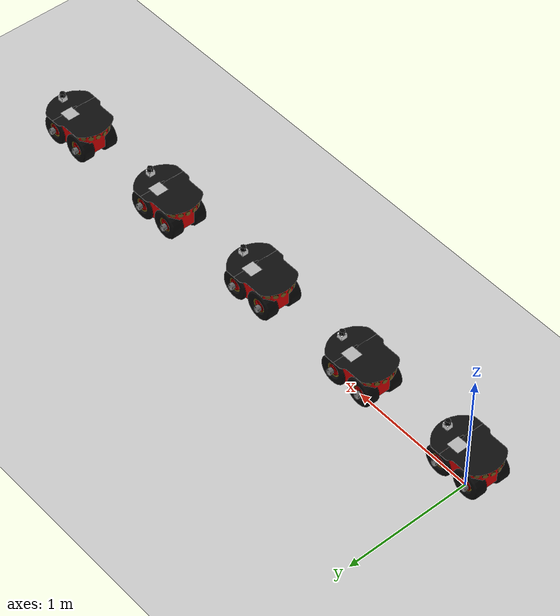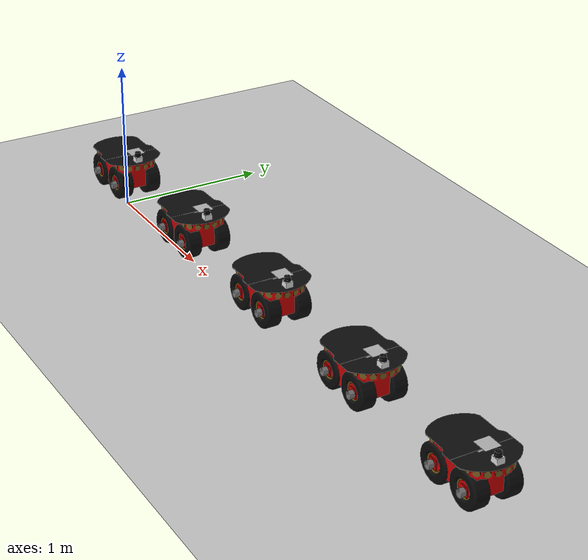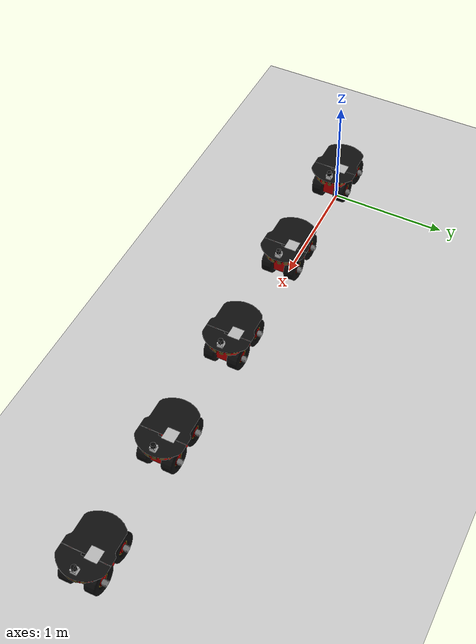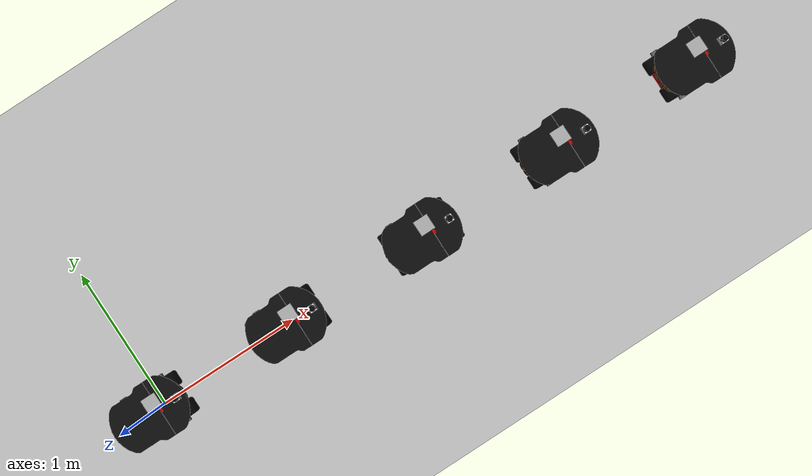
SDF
<sdf version="1.4">
 <world name="default">
  <model name="ground_plane">
   <static>1</static>
   <link name="link">
    <collision name="collision">
     <geometry><plane><normal>0 0 1</normal><size>100 100</size></plane></geometry>
     <surface><friction><ode><mu>100</mu><mu2>50</mu2></ode></friction></surface>
    </collision>
    <visual name="visual">
     <cast_shadows>0</cast_shadows>
     <geometry><plane><normal>0 0 1</normal><size>100 100</size></plane></geometry>
     <material>
      <script><uri>file://media/materials/scripts/gazebo.material</uri><name>Gazebo/Grey</name></script>
     </material>
    </visual>
    <velocity_decay><linear>0</linear><angular>0</angular></velocity_decay>
   </link>
  </model>
  <model name="pioneer3at_1">
   <pose>0 0 0.3 0 -0 0</pose>
   <static>0</static>
   <link name="chassis">
    <inertial>
     <mass>500</mass>
     <inertia><ixx>0.3338</ixx><ixy>0</ixy><ixz>0</ixz><iyy>0.4783</iyy><iyz>0</iyz><izz>0.3338</izz></inertia>
    </inertial>
    <collision name="collision"><geometry><box><size>0.501 0.2 0.19</size></box></geometry></collision>
    <visual name="visual">
     <geometry><mesh><uri>model://pioneer3at/meshes/chassis.dae</uri></mesh></geometry>
    </visual>
    <velocity_decay><linear>0</linear><angular>0</angular></velocity_decay>
   </link>
   <link name="right_front_wheel">
    <pose>0.125 -0.1005 -0.06 1.5707 -0 0</pose>
    <collision name="collision">
     <geometry><cylinder><radius>0.11</radius><length>0.075</length></cylinder></geometry>
     <surface><friction><ode><mu>1</mu><mu2>1</mu2><slip1>0.5</slip1><slip2>0</slip2></ode></friction></surface>
    </collision>
    <visual name="visual">
     <geometry><mesh><uri>model://pioneer3at/meshes/wheel.dae</uri></mesh></geometry>
    </visual>
    <velocity_decay><linear>0</linear><angular>0</angular></velocity_decay>
    <inertial>
     <inertia><ixx>1</ixx><ixy>0</ixy><ixz>0</ixz><iyy>1</iyy><iyz>0</iyz><izz>1</izz></inertia>
     <mass>1</mass>
    </inertial>
   </link>
   <link name="left_front_wheel">
    <pose>0.125 0.1005 -0.06 1.5707 -0 0</pose>
    <collision name="collision">
     <geometry><cylinder><radius>0.11</radius><length>0.075</length></cylinder></geometry>
     <surface><friction><ode><mu>1</mu><mu2>1</mu2><slip1>0.5</slip1><slip2>0</slip2></ode></friction></surface>
    </collision>
    <visual name="visual">
     <geometry><mesh><uri>model://pioneer3at/meshes/wheel.dae</uri></mesh></geometry>
    </visual>
    <velocity_decay><linear>0</linear><angular>0</angular></velocity_decay>
    <inertial>
     <inertia><ixx>1</ixx><ixy>0</ixy><ixz>0</ixz><iyy>1</iyy><iyz>0</iyz><izz>1</izz></inertia>
     <mass>1</mass>
    </inertial>
   </link>
   <link name="right_rear_wheel">
    <pose>-0.125 -0.1005 -0.06 1.5707 -0 0</pose>
    <collision name="collision">
     <geometry><cylinder><radius>0.11</radius><length>0.075</length></cylinder></geometry>
     <surface><friction><ode><mu>1</mu><mu2>1</mu2><slip1>0.5</slip1><slip2>0</slip2></ode></friction></surface>
    </collision>
    <visual name="visual">
     <geometry><mesh><uri>model://pioneer3at/meshes/wheel.dae</uri></mesh></geometry>
    </visual>
    <velocity_decay><linear>0</linear><angular>0</angular></velocity_decay>
    <inertial>
     <inertia><ixx>1</ixx><ixy>0</ixy><ixz>0</ixz><iyy>1</iyy><iyz>0</iyz><izz>1</izz></inertia>
     <mass>1</mass>
    </inertial>
   </link>
   <link name="left_rear_wheel">
    <pose>-0.125 0.1005 -0.06 1.5707 -0 0</pose>
    <collision name="collision">
     <geometry><cylinder><radius>0.11</radius><length>0.075</length></cylinder></geometry>
     <surface><friction><ode><mu>1</mu><mu2>1</mu2><slip1>0.5</slip1><slip2>0</slip2></ode></friction></surface>
    </collision>
    <visual name="visual">
     <geometry><mesh><scale>1 1 1</scale><uri>model://pioneer3at/meshes/wheel.dae</uri></mesh></geometry>
    </visual>
    <velocity_decay><linear>0</linear><angular>0</angular></velocity_decay>
    <inertial>
     <inertia><ixx>1</ixx><ixy>0</ixy><ixz>0</ixz><iyy>1</iyy><iyz>0</iyz><izz>1</izz></inertia>
     <mass>1</mass>
    </inertial>
   </link>
   <joint name="right_front" type="revolute">
    <child>right_front_wheel</child>
    <parent>chassis</parent>
    <axis><xyz>0 1 0</xyz><limit><lower>-1e+16</lower><upper>1e+16</upper></limit></axis>
   </joint>
   <joint name="right_rear" type="revolute">
    <child>right_rear_wheel</child>
    <parent>chassis</parent>
    <axis><xyz>0 1 0</xyz><limit><lower>-1e+16</lower><upper>1e+16</upper></limit></axis>
   </joint>
   <joint name="left_front" type="revolute">
    <child>left_front_wheel</child>
    <parent>chassis</parent>
    <axis><xyz>0 1 0</xyz><limit><lower>-1e+16</lower><upper>1e+16</upper></limit></axis>
   </joint>
   <joint name="left_rear" type="revolute">
    <child>left_rear_wheel</child>
    <parent>chassis</parent>
    <axis><xyz>0 1 0</xyz><limit><lower>-1e+16</lower><upper>1e+16</upper></limit></axis>
   </joint>
   <link name="hokuyo::link">
    <inertial>
     <mass>0.1</mass>
     <inertia><ixx>1</ixx><ixy>0</ixy><ixz>0</ixz><iyy>1</iyy><iyz>0</iyz><izz>1</izz></inertia>
    </inertial>
    <visual name="visual"><geometry><mesh><uri>model://hokuyo/meshes/hokuyo.dae</uri></mesh></geometry></visual>
    <collision name="collision-base">
     <pose>0 0 -0.0145 0 -0 0</pose>
     <geometry><box><size>0.05 0.05 0.041</size></box></geometry>
    </collision>
    <collision name="collision-top">
     <pose>0 0 0.0205 0 -0 0</pose>
     <geometry><cylinder><radius>0.021</radius><length>0.029</length></cylinder></geometry>
    </collision>
    <sensor name="laser" type="ray">
     <pose>0.15 0 -0.1 0 -0 0</pose>
     <ray>
      <scan>
       <horizontal>
        <samples>1040</samples>
        <resolution>1</resolution>
        <min_angle>-2.26889</min_angle>
        <max_angle>2.2689</max_angle>
       </horizontal>
      </scan>
      <range><min>0.1</min><max>30</max><resolution>0.01</resolution></range>
     </ray>
     <plugin name="gazebo_ros_hokuyo_laser_controller" filename="libgazebo_ros_laser.so">
      <gaussianNoise>0.01</gaussianNoise>
      <alwaysOn>true</alwaysOn>
      <hokuyoMinIntensity>101</hokuyoMinIntensity>
      <updateRate>40.0</updateRate>
      <topicName>/pioneer_1/scan</topicName>
      <frameName>laser</frameName>
     </plugin>
     <always_on>1</always_on>
     <update_rate>30</update_rate>
     <visualize>1</visualize>
    </sensor>
    <velocity_decay><linear>0</linear><angular>0</angular></velocity_decay>
    <pose>0.2 0 0.13 0 -0 0</pose>
   </link>
   <joint name="hokuyo_joint" type="revolute">
    <child>hokuyo::link</child>
    <parent>chassis</parent>
    <axis><xyz>0 0 1</xyz><limit><upper>0</upper><lower>0</lower></limit></axis>
   </joint>
   <link name="camera::link">
    <pose>0.05 0.05 0.05 0 -0 0</pose>
    <inertial>
     <mass>0.1</mass>
     <inertia><ixx>1</ixx><ixy>0</ixy><ixz>0</ixz><iyy>1</iyy><iyz>0</iyz><izz>1</izz></inertia>
    </inertial>
    <collision name="collision"><geometry><box><size>0.1 0.1 0.1</size></box></geometry></collision>
    <visual name="visual"><geometry><box><size>0.1 0.1 0.1</size></box></geometry></visual>
    <sensor name="camera" type="camera">
     <camera name="__default__">
      <horizontal_fov>0.752</horizontal_fov>
      <image><width>640</width><height>480</height></image>
      <clip><near>0.1</near><far>100</far></clip>
     </camera>
     <always_on>1</always_on>
     <update_rate>15</update_rate>
     <visualize>0</visualize>
     <plugin name="ros_camera" filename="libgazebo_ros_camera.so">
      <robotNamespace>/pioneer_1</robotNamespace>
     </plugin>
    </sensor>
    <velocity_decay><linear>0</linear><angular>0</angular></velocity_decay>
   </link>
   <joint name="camera_joint" type="revolute">
    <child>camera::link</child>
    <parent>chassis</parent>
    <axis><xyz>0 0 1</xyz><limit><upper>0</upper><lower>0</lower></limit></axis>
   </joint>
   <plugin name="skid_steer_drive_controller" filename="libgazebo_ros_skid_steer_drive.so">
    <updateRate>100.0</updateRate>
    <robotNamespace>/pioneer_1</robotNamespace>
    <leftFrontJoint>left_front</leftFrontJoint>
    <rightFrontJoint>right_front</rightFrontJoint>
    <leftRearJoint>left_rear</leftRearJoint>
    <rightRearJoint>right_rear</rightRearJoint>
    <wheelSeparation>0.4</wheelSeparation>
    <wheelDiameter>0.215</wheelDiameter>
    <robotBaseFrame>/pioneer_1/odom_tf</robotBaseFrame>
    <torque>120</torque>
    <commandTopic>cmd_vel</commandTopic>
    <broadcastTF>1</broadcastTF>
   </plugin>
   <plugin name="imu_en_ros" filename="libgazebo_ros_imu.so">
    <bodyName>chassis</bodyName>
    <robotNamespace>/pioneer_1</robotNamespace>
    <topicName>imu</topicName>
    <gaussianNoise>0.00</gaussianNoise>
    <updateRate>45.0</updateRate>
   </plugin>
  </model>
  <model name="pioneer3at_2">
   <pose>1 0 0.3 0 -0 0</pose>
   <static>0</static>
   <link name="chassis">
    <inertial>
     <mass>500</mass>
     <inertia><ixx>0.3338</ixx><ixy>0</ixy><ixz>0</ixz><iyy>0.4783</iyy><iyz>0</iyz><izz>0.3338</izz></inertia>
    </inertial>
    <collision name="collision"><geometry><box><size>0.501 0.2 0.19</size></box></geometry></collision>
    <visual name="visual">
     <geometry><mesh><uri>model://pioneer3at/meshes/chassis.dae</uri></mesh></geometry>
    </visual>
    <velocity_decay><linear>0</linear><angular>0</angular></velocity_decay>
   </link>
   <link name="right_front_wheel">
    <pose>0.125 -0.1005 -0.06 1.5707 -0 0</pose>
    <collision name="collision">
     <geometry><cylinder><radius>0.11</radius><length>0.075</length></cylinder></geometry>
     <surface><friction><ode><mu>1</mu><mu2>1</mu2><slip1>0.5</slip1><slip2>0</slip2></ode></friction></surface>
    </collision>
    <visual name="visual">
     <geometry><mesh><uri>model://pioneer3at/meshes/wheel.dae</uri></mesh></geometry>
    </visual>
    <velocity_decay><linear>0</linear><angular>0</angular></velocity_decay>
    <inertial>
     <inertia><ixx>1</ixx><ixy>0</ixy><ixz>0</ixz><iyy>1</iyy><iyz>0</iyz><izz>1</izz></inertia>
     <mass>1</mass>
    </inertial>
   </link>
   <link name="left_front_wheel">
    <pose>0.125 0.1005 -0.06 1.5707 -0 0</pose>
    <collision name="collision">
     <geometry><cylinder><radius>0.11</radius><length>0.075</length></cylinder></geometry>
     <surface><friction><ode><mu>1</mu><mu2>1</mu2><slip1>0.5</slip1><slip2>0</slip2></ode></friction></surface>
    </collision>
    <visual name="visual">
     <geometry><mesh><uri>model://pioneer3at/meshes/wheel.dae</uri></mesh></geometry>
    </visual>
    <velocity_decay><linear>0</linear><angular>0</angular></velocity_decay>
    <inertial>
     <inertia><ixx>1</ixx><ixy>0</ixy><ixz>0</ixz><iyy>1</iyy><iyz>0</iyz><izz>1</izz></inertia>
     <mass>1</mass>
    </inertial>
   </link>
   <link name="right_rear_wheel">
    <pose>-0.125 -0.1005 -0.06 1.5707 -0 0</pose>
    <collision name="collision">
     <geometry><cylinder><radius>0.11</radius><length>0.075</length></cylinder></geometry>
     <surface><friction><ode><mu>1</mu><mu2>1</mu2><slip1>0.5</slip1><slip2>0</slip2></ode></friction></surface>
    </collision>
    <visual name="visual">
     <geometry><mesh><uri>model://pioneer3at/meshes/wheel.dae</uri></mesh></geometry>
    </visual>
    <velocity_decay><linear>0</linear><angular>0</angular></velocity_decay>
    <inertial>
     <inertia><ixx>1</ixx><ixy>0</ixy><ixz>0</ixz><iyy>1</iyy><iyz>0</iyz><izz>1</izz></inertia>
     <mass>1</mass>
    </inertial>
   </link>
   <link name="left_rear_wheel">
    <pose>-0.125 0.1005 -0.06 1.5707 -0 0</pose>
    <collision name="collision">
     <geometry><cylinder><radius>0.11</radius><length>0.075</length></cylinder></geometry>
     <surface><friction><ode><mu>1</mu><mu2>1</mu2><slip1>0.5</slip1><slip2>0</slip2></ode></friction></surface>
    </collision>
    <visual name="visual">
     <geometry><mesh><scale>1 1 1</scale><uri>model://pioneer3at/meshes/wheel.dae</uri></mesh></geometry>
    </visual>
    <velocity_decay><linear>0</linear><angular>0</angular></velocity_decay>
    <inertial>
     <inertia><ixx>1</ixx><ixy>0</ixy><ixz>0</ixz><iyy>1</iyy><iyz>0</iyz><izz>1</izz></inertia>
     <mass>1</mass>
    </inertial>
   </link>
   <joint name="right_front" type="revolute">
    <child>right_front_wheel</child>
    <parent>chassis</parent>
    <axis><xyz>0 1 0</xyz><limit><lower>-1e+16</lower><upper>1e+16</upper></limit></axis>
   </joint>
   <joint name="right_rear" type="revolute">
    <child>right_rear_wheel</child>
    <parent>chassis</parent>
    <axis><xyz>0 1 0</xyz><limit><lower>-1e+16</lower><upper>1e+16</upper></limit></axis>
   </joint>
   <joint name="left_front" type="revolute">
    <child>left_front_wheel</child>
    <parent>chassis</parent>
    <axis><xyz>0 1 0</xyz><limit><lower>-1e+16</lower><upper>1e+16</upper></limit></axis>
   </joint>
   <joint name="left_rear" type="revolute">
    <child>left_rear_wheel</child>
    <parent>chassis</parent>
    <axis><xyz>0 1 0</xyz><limit><lower>-1e+16</lower><upper>1e+16</upper></limit></axis>
   </joint>
   <link name="hokuyo::link">
    <inertial>
     <mass>0.1</mass>
     <inertia><ixx>1</ixx><ixy>0</ixy><ixz>0</ixz><iyy>1</iyy><iyz>0</iyz><izz>1</izz></inertia>
    </inertial>
    <visual name="visual"><geometry><mesh><uri>model://hokuyo/meshes/hokuyo.dae</uri></mesh></geometry></visual>
    <collision name="collision-base">
     <pose>0 0 -0.0145 0 -0 0</pose>
     <geometry><box><size>0.05 0.05 0.041</size></box></geometry>
    </collision>
    <collision name="collision-top">
     <pose>0 0 0.0205 0 -0 0</pose>
     <geometry><cylinder><radius>0.021</radius><length>0.029</length></cylinder></geometry>
    </collision>
    <sensor name="laser" type="ray">
     <pose>0.15 0 -0.1 0 -0 0</pose>
     <ray>
      <scan>
       <horizontal>
        <samples>1040</samples>
        <resolution>1</resolution>
        <min_angle>-2.26889</min_angle>
        <max_angle>2.2689</max_angle>
       </horizontal>
      </scan>
      <range><min>0.1</min><max>30</max><resolution>0.01</resolution></range>
     </ray>
     <plugin name="gazebo_ros_hokuyo_laser_controller" filename="libgazebo_ros_laser.so">
      <gaussianNoise>0.01</gaussianNoise>
      <alwaysOn>true</alwaysOn>
      <hokuyoMinIntensity>101</hokuyoMinIntensity>
      <updateRate>40.0</updateRate>
      <topicName>/pioneer_2/scan</topicName>
      <frameName>laser</frameName>
     </plugin>
     <always_on>1</always_on>
     <update_rate>30</update_rate>
     <visualize>1</visualize>
    </sensor>
    <velocity_decay><linear>0</linear><angular>0</angular></velocity_decay>
    <pose>0.2 0 0.13 0 -0 0</pose>
   </link>
   <joint name="hokuyo_joint" type="revolute">
    <child>hokuyo::link</child>
    <parent>chassis</parent>
    <axis><xyz>0 0 1</xyz><limit><upper>0</upper><lower>0</lower></limit></axis>
   </joint>
   <link name="camera::link">
    <pose>0.05 0.05 0.05 0 -0 0</pose>
    <inertial>
     <mass>0.1</mass>
     <inertia><ixx>1</ixx><ixy>0</ixy><ixz>0</ixz><iyy>1</iyy><iyz>0</iyz><izz>1</izz></inertia>
    </inertial>
    <collision name="collision"><geometry><box><size>0.1 0.1 0.1</size></box></geometry></collision>
    <visual name="visual"><geometry><box><size>0.1 0.1 0.1</size></box></geometry></visual>
    <sensor name="camera" type="camera">
     <camera name="__default__">
      <horizontal_fov>0.752</horizontal_fov>
      <image><width>640</width><height>480</height></image>
      <clip><near>0.1</near><far>100</far></clip>
     </camera>
     <always_on>1</always_on>
     <update_rate>15</update_rate>
     <visualize>0</visualize>
     <plugin name="ros_camera" filename="libgazebo_ros_camera.so">
      <robotNamespace>/pioneer_2</robotNamespace>
     </plugin>
    </sensor>
    <velocity_decay><linear>0</linear><angular>0</angular></velocity_decay>
   </link>
   <joint name="camera_joint" type="revolute">
    <child>camera::link</child>
    <parent>chassis</parent>
    <axis><xyz>0 0 1</xyz><limit><upper>0</upper><lower>0</lower></limit></axis>
   </joint>
   <plugin name="skid_steer_drive_controller" filename="libgazebo_ros_skid_steer_drive.so">
    <updateRate>100.0</updateRate>
    <robotNamespace>/pioneer_2</robotNamespace>
    <leftFrontJoint>left_front</leftFrontJoint>
    <rightFrontJoint>right_front</rightFrontJoint>
    <leftRearJoint>left_rear</leftRearJoint>
    <rightRearJoint>right_rear</rightRearJoint>
    <wheelSeparation>0.4</wheelSeparation>
    <wheelDiameter>0.215</wheelDiameter>
    <robotBaseFrame>/pioneer_2/odom_tf</robotBaseFrame>
    <torque>120</torque>
    <commandTopic>cmd_vel</commandTopic>
    <broadcastTF>1</broadcastTF>
   </plugin>
   <plugin name="imu_en_ros" filename="libgazebo_ros_imu.so">
    <bodyName>chassis</bodyName>
    <robotNamespace>/pioneer_2</robotNamespace>
    <topicName>imu</topicName>
    <gaussianNoise>0.00</gaussianNoise>
    <updateRate>45.0</updateRate>
   </plugin>
  </model>
  <model name="pioneer3at_3">
   <pose>2 0 0.3 0 -0 0</pose>
   <static>0</static>
   <link name="chassis">
    <inertial>
     <mass>500</mass>
     <inertia><ixx>0.3338</ixx><ixy>0</ixy><ixz>0</ixz><iyy>0.4783</iyy><iyz>0</iyz><izz>0.3338</izz></inertia>
    </inertial>
    <collision name="collision"><geometry><box><size>0.501 0.2 0.19</size></box></geometry></collision>
    <visual name="visual">
     <geometry><mesh><uri>model://pioneer3at/meshes/chassis.dae</uri></mesh></geometry>
    </visual>
    <velocity_decay><linear>0</linear><angular>0</angular></velocity_decay>
   </link>
   <link name="right_front_wheel">
    <pose>0.125 -0.1005 -0.06 1.5707 -0 0</pose>
    <collision name="collision">
     <geometry><cylinder><radius>0.11</radius><length>0.075</length></cylinder></geometry>
     <surface><friction><ode><mu>1</mu><mu2>1</mu2><slip1>0.5</slip1><slip2>0</slip2></ode></friction></surface>
    </collision>
    <visual name="visual">
     <geometry><mesh><uri>model://pioneer3at/meshes/wheel.dae</uri></mesh></geometry>
    </visual>
    <velocity_decay><linear>0</linear><angular>0</angular></velocity_decay>
    <inertial>
     <inertia><ixx>1</ixx><ixy>0</ixy><ixz>0</ixz><iyy>1</iyy><iyz>0</iyz><izz>1</izz></inertia>
     <mass>1</mass>
    </inertial>
   </link>
   <link name="left_front_wheel">
    <pose>0.125 0.1005 -0.06 1.5707 -0 0</pose>
    <collision name="collision">
     <geometry><cylinder><radius>0.11</radius><length>0.075</length></cylinder></geometry>
     <surface><friction><ode><mu>1</mu><mu2>1</mu2><slip1>0.5</slip1><slip2>0</slip2></ode></friction></surface>
    </collision>
    <visual name="visual">
     <geometry><mesh><uri>model://pioneer3at/meshes/wheel.dae</uri></mesh></geometry>
    </visual>
    <velocity_decay><linear>0</linear><angular>0</angular></velocity_decay>
    <inertial>
     <inertia><ixx>1</ixx><ixy>0</ixy><ixz>0</ixz><iyy>1</iyy><iyz>0</iyz><izz>1</izz></inertia>
     <mass>1</mass>
    </inertial>
   </link>
   <link name="right_rear_wheel">
    <pose>-0.125 -0.1005 -0.06 1.5707 -0 0</pose>
    <collision name="collision">
     <geometry><cylinder><radius>0.11</radius><length>0.075</length></cylinder></geometry>
     <surface><friction><ode><mu>1</mu><mu2>1</mu2><slip1>0.5</slip1><slip2>0</slip2></ode></friction></surface>
    </collision>
    <visual name="visual">
     <geometry><mesh><uri>model://pioneer3at/meshes/wheel.dae</uri></mesh></geometry>
    </visual>
    <velocity_decay><linear>0</linear><angular>0</angular></velocity_decay>
    <inertial>
     <inertia><ixx>1</ixx><ixy>0</ixy><ixz>0</ixz><iyy>1</iyy><iyz>0</iyz><izz>1</izz></inertia>
     <mass>1</mass>
    </inertial>
   </link>
   <link name="left_rear_wheel">
    <pose>-0.125 0.1005 -0.06 1.5707 -0 0</pose>
    <collision name="collision">
     <geometry><cylinder><radius>0.11</radius><length>0.075</length></cylinder></geometry>
     <surface><friction><ode><mu>1</mu><mu2>1</mu2><slip1>0.5</slip1><slip2>0</slip2></ode></friction></surface>
    </collision>
    <visual name="visual">
     <geometry><mesh><scale>1 1 1</scale><uri>model://pioneer3at/meshes/wheel.dae</uri></mesh></geometry>
    </visual>
    <velocity_decay><linear>0</linear><angular>0</angular></velocity_decay>
    <inertial>
     <inertia><ixx>1</ixx><ixy>0</ixy><ixz>0</ixz><iyy>1</iyy><iyz>0</iyz><izz>1</izz></inertia>
     <mass>1</mass>
    </inertial>
   </link>
   <joint name="right_front" type="revolute">
    <child>right_front_wheel</child>
    <parent>chassis</parent>
    <axis><xyz>0 1 0</xyz><limit><lower>-1e+16</lower><upper>1e+16</upper></limit></axis>
   </joint>
   <joint name="right_rear" type="revolute">
    <child>right_rear_wheel</child>
    <parent>chassis</parent>
    <axis><xyz>0 1 0</xyz><limit><lower>-1e+16</lower><upper>1e+16</upper></limit></axis>
   </joint>
   <joint name="left_front" type="revolute">
    <child>left_front_wheel</child>
    <parent>chassis</parent>
    <axis><xyz>0 1 0</xyz><limit><lower>-1e+16</lower><upper>1e+16</upper></limit></axis>
   </joint>
   <joint name="left_rear" type="revolute">
    <child>left_rear_wheel</child>
    <parent>chassis</parent>
    <axis><xyz>0 1 0</xyz><limit><lower>-1e+16</lower><upper>1e+16</upper></limit></axis>
   </joint>
   <link name="hokuyo::link">
    <inertial>
     <mass>0.1</mass>
     <inertia><ixx>1</ixx><ixy>0</ixy><ixz>0</ixz><iyy>1</iyy><iyz>0</iyz><izz>1</izz></inertia>
    </inertial>
    <visual name="visual"><geometry><mesh><uri>model://hokuyo/meshes/hokuyo.dae</uri></mesh></geometry></visual>
    <collision name="collision-base">
     <pose>0 0 -0.0145 0 -0 0</pose>
     <geometry><box><size>0.05 0.05 0.041</size></box></geometry>
    </collision>
    <collision name="collision-top">
     <pose>0 0 0.0205 0 -0 0</pose>
     <geometry><cylinder><radius>0.021</radius><length>0.029</length></cylinder></geometry>
    </collision>
    <sensor name="laser" type="ray">
     <pose>0.15 0 -0.1 0 -0 0</pose>
     <ray>
      <scan>
       <horizontal>
        <samples>1040</samples>
        <resolution>1</resolution>
        <min_angle>-2.26889</min_angle>
        <max_angle>2.2689</max_angle>
       </horizontal>
      </scan>
      <range><min>0.1</min><max>30</max><resolution>0.01</resolution></range>
     </ray>
     <plugin name="gazebo_ros_hokuyo_laser_controller" filename="libgazebo_ros_laser.so">
      <gaussianNoise>0.01</gaussianNoise>
      <alwaysOn>true</alwaysOn>
      <hokuyoMinIntensity>101</hokuyoMinIntensity>
      <updateRate>40.0</updateRate>
      <topicName>/pioneer_3/scan</topicName>
      <frameName>laser</frameName>
     </plugin>
     <always_on>1</always_on>
     <update_rate>30</update_rate>
     <visualize>1</visualize>
    </sensor>
    <velocity_decay><linear>0</linear><angular>0</angular></velocity_decay>
    <pose>0.2 0 0.13 0 -0 0</pose>
   </link>
   <joint name="hokuyo_joint" type="revolute">
    <child>hokuyo::link</child>
    <parent>chassis</parent>
    <axis><xyz>0 0 1</xyz><limit><upper>0</upper><lower>0</lower></limit></axis>
   </joint>
   <link name="camera::link">
    <pose>0.05 0.05 0.05 0 -0 0</pose>
    <inertial>
     <mass>0.1</mass>
     <inertia><ixx>1</ixx><ixy>0</ixy><ixz>0</ixz><iyy>1</iyy><iyz>0</iyz><izz>1</izz></inertia>
    </inertial>
    <collision name="collision"><geometry><box><size>0.1 0.1 0.1</size></box></geometry></collision>
    <visual name="visual"><geometry><box><size>0.1 0.1 0.1</size></box></geometry></visual>
    <sensor name="camera" type="camera">
     <camera name="__default__">
      <horizontal_fov>0.752</horizontal_fov>
      <image><width>640</width><height>480</height></image>
      <clip><near>0.1</near><far>100</far></clip>
     </camera>
     <always_on>1</always_on>
     <update_rate>15</update_rate>
     <visualize>0</visualize>
     <plugin name="ros_camera" filename="libgazebo_ros_camera.so">
      <robotNamespace>/pioneer_3</robotNamespace>
     </plugin>
    </sensor>
    <velocity_decay><linear>0</linear><angular>0</angular></velocity_decay>
   </link>
   <joint name="camera_joint" type="revolute">
    <child>camera::link</child>
    <parent>chassis</parent>
    <axis><xyz>0 0 1</xyz><limit><upper>0</upper><lower>0</lower></limit></axis>
   </joint>
   <plugin name="skid_steer_drive_controller" filename="libgazebo_ros_skid_steer_drive.so">
    <updateRate>100.0</updateRate>
    <robotNamespace>/pioneer_3</robotNamespace>
    <leftFrontJoint>left_front</leftFrontJoint>
    <rightFrontJoint>right_front</rightFrontJoint>
    <leftRearJoint>left_rear</leftRearJoint>
    <rightRearJoint>right_rear</rightRearJoint>
    <wheelSeparation>0.4</wheelSeparation>
    <wheelDiameter>0.215</wheelDiameter>
    <robotBaseFrame>/pioneer_3/odom_tf</robotBaseFrame>
    <torque>120</torque>
    <commandTopic>cmd_vel</commandTopic>
    <broadcastTF>1</broadcastTF>
   </plugin>
   <plugin name="imu_en_ros" filename="libgazebo_ros_imu.so">
    <bodyName>chassis</bodyName>
    <robotNamespace>/pioneer_3</robotNamespace>
    <topicName>imu</topicName>
    <gaussianNoise>0.00</gaussianNoise>
    <updateRate>45.0</updateRate>
   </plugin>
  </model>
  <model name="pioneer3at_4">
   <pose>3 0 0.3 0 -0 0</pose>
   <static>0</static>
   <link name="chassis">
    <inertial>
     <mass>500</mass>
     <inertia><ixx>0.3338</ixx><ixy>0</ixy><ixz>0</ixz><iyy>0.4783</iyy><iyz>0</iyz><izz>0.3338</izz></inertia>
    </inertial>
    <collision name="collision"><geometry><box><size>0.501 0.2 0.19</size></box></geometry></collision>
    <visual name="visual">
     <geometry><mesh><uri>model://pioneer3at/meshes/chassis.dae</uri></mesh></geometry>
    </visual>
    <velocity_decay><linear>0</linear><angular>0</angular></velocity_decay>
   </link>
   <link name="right_front_wheel">
    <pose>0.125 -0.1005 -0.06 1.5707 -0 0</pose>
    <collision name="collision">
     <geometry><cylinder><radius>0.11</radius><length>0.075</length></cylinder></geometry>
     <surface><friction><ode><mu>1</mu><mu2>1</mu2><slip1>0.5</slip1><slip2>0</slip2></ode></friction></surface>
    </collision>
    <visual name="visual">
     <geometry><mesh><uri>model://pioneer3at/meshes/wheel.dae</uri></mesh></geometry>
    </visual>
    <velocity_decay><linear>0</linear><angular>0</angular></velocity_decay>
    <inertial>
     <inertia><ixx>1</ixx><ixy>0</ixy><ixz>0</ixz><iyy>1</iyy><iyz>0</iyz><izz>1</izz></inertia>
     <mass>1</mass>
    </inertial>
   </link>
   <link name="left_front_wheel">
    <pose>0.125 0.1005 -0.06 1.5707 -0 0</pose>
    <collision name="collision">
     <geometry><cylinder><radius>0.11</radius><length>0.075</length></cylinder></geometry>
     <surface><friction><ode><mu>1</mu><mu2>1</mu2><slip1>0.5</slip1><slip2>0</slip2></ode></friction></surface>
    </collision>
    <visual name="visual">
     <geometry><mesh><uri>model://pioneer3at/meshes/wheel.dae</uri></mesh></geometry>
    </visual>
    <velocity_decay><linear>0</linear><angular>0</angular></velocity_decay>
    <inertial>
     <inertia><ixx>1</ixx><ixy>0</ixy><ixz>0</ixz><iyy>1</iyy><iyz>0</iyz><izz>1</izz></inertia>
     <mass>1</mass>
    </inertial>
   </link>
   <link name="right_rear_wheel">
    <pose>-0.125 -0.1005 -0.06 1.5707 -0 0</pose>
    <collision name="collision">
     <geometry><cylinder><radius>0.11</radius><length>0.075</length></cylinder></geometry>
     <surface><friction><ode><mu>1</mu><mu2>1</mu2><slip1>0.5</slip1><slip2>0</slip2></ode></friction></surface>
    </collision>
    <visual name="visual">
     <geometry><mesh><uri>model://pioneer3at/meshes/wheel.dae</uri></mesh></geometry>
    </visual>
    <velocity_decay><linear>0</linear><angular>0</angular></velocity_decay>
    <inertial>
     <inertia><ixx>1</ixx><ixy>0</ixy><ixz>0</ixz><iyy>1</iyy><iyz>0</iyz><izz>1</izz></inertia>
     <mass>1</mass>
    </inertial>
   </link>
   <link name="left_rear_wheel">
    <pose>-0.125 0.1005 -0.06 1.5707 -0 0</pose>
    <collision name="collision">
     <geometry><cylinder><radius>0.11</radius><length>0.075</length></cylinder></geometry>
     <surface><friction><ode><mu>1</mu><mu2>1</mu2><slip1>0.5</slip1><slip2>0</slip2></ode></friction></surface>
    </collision>
    <visual name="visual">
     <geometry><mesh><scale>1 1 1</scale><uri>model://pioneer3at/meshes/wheel.dae</uri></mesh></geometry>
    </visual>
    <velocity_decay><linear>0</linear><angular>0</angular></velocity_decay>
    <inertial>
     <inertia><ixx>1</ixx><ixy>0</ixy><ixz>0</ixz><iyy>1</iyy><iyz>0</iyz><izz>1</izz></inertia>
     <mass>1</mass>
    </inertial>
   </link>
   <joint name="right_front" type="revolute">
    <child>right_front_wheel</child>
    <parent>chassis</parent>
    <axis><xyz>0 1 0</xyz><limit><lower>-1e+16</lower><upper>1e+16</upper></limit></axis>
   </joint>
   <joint name="right_rear" type="revolute">
    <child>right_rear_wheel</child>
    <parent>chassis</parent>
    <axis><xyz>0 1 0</xyz><limit><lower>-1e+16</lower><upper>1e+16</upper></limit></axis>
   </joint>
   <joint name="left_front" type="revolute">
    <child>left_front_wheel</child>
    <parent>chassis</parent>
    <axis><xyz>0 1 0</xyz><limit><lower>-1e+16</lower><upper>1e+16</upper></limit></axis>
   </joint>
   <joint name="left_rear" type="revolute">
    <child>left_rear_wheel</child>
    <parent>chassis</parent>
    <axis><xyz>0 1 0</xyz><limit><lower>-1e+16</lower><upper>1e+16</upper></limit></axis>
   </joint>
   <link name="hokuyo::link">
    <inertial>
     <mass>0.1</mass>
     <inertia><ixx>1</ixx><ixy>0</ixy><ixz>0</ixz><iyy>1</iyy><iyz>0</iyz><izz>1</izz></inertia>
    </inertial>
    <visual name="visual"><geometry><mesh><uri>model://hokuyo/meshes/hokuyo.dae</uri></mesh></geometry></visual>
    <collision name="collision-base">
     <pose>0 0 -0.0145 0 -0 0</pose>
     <geometry><box><size>0.05 0.05 0.041</size></box></geometry>
    </collision>
    <collision name="collision-top">
     <pose>0 0 0.0205 0 -0 0</pose>
     <geometry><cylinder><radius>0.021</radius><length>0.029</length></cylinder></geometry>
    </collision>
    <sensor name="laser" type="ray">
     <pose>0.15 0 -0.1 0 -0 0</pose>
     <ray>
      <scan>
       <horizontal>
        <samples>1040</samples>
        <resolution>1</resolution>
        <min_angle>-2.26889</min_angle>
        <max_angle>2.2689</max_angle>
       </horizontal>
      </scan>
      <range><min>0.1</min><max>30</max><resolution>0.01</resolution></range>
     </ray>
     <plugin name="gazebo_ros_hokuyo_laser_controller" filename="libgazebo_ros_laser.so">
      <gaussianNoise>0.01</gaussianNoise>
      <alwaysOn>true</alwaysOn>
      <hokuyoMinIntensity>101</hokuyoMinIntensity>
      <updateRate>40.0</updateRate>
      <topicName>/pioneer_4/scan</topicName>
      <frameName>laser</frameName>
     </plugin>
     <always_on>1</always_on>
     <update_rate>30</update_rate>
     <visualize>1</visualize>
    </sensor>
    <velocity_decay><linear>0</linear><angular>0</angular></velocity_decay>
    <pose>0.2 0 0.13 0 -0 0</pose>
   </link>
   <joint name="hokuyo_joint" type="revolute">
    <child>hokuyo::link</child>
    <parent>chassis</parent>
    <axis><xyz>0 0 1</xyz><limit><upper>0</upper><lower>0</lower></limit></axis>
   </joint>
   <link name="camera::link">
    <pose>0.05 0.05 0.05 0 -0 0</pose>
    <inertial>
     <mass>0.1</mass>
     <inertia><ixx>1</ixx><ixy>0</ixy><ixz>0</ixz><iyy>1</iyy><iyz>0</iyz><izz>1</izz></inertia>
    </inertial>
    <collision name="collision"><geometry><box><size>0.1 0.1 0.1</size></box></geometry></collision>
    <visual name="visual"><geometry><box><size>0.1 0.1 0.1</size></box></geometry></visual>
    <sensor name="camera" type="camera">
     <camera name="__default__">
      <horizontal_fov>0.752</horizontal_fov>
      <image><width>640</width><height>480</height></image>
      <clip><near>0.1</near><far>100</far></clip>
     </camera>
     <always_on>1</always_on>
     <update_rate>15</update_rate>
     <visualize>0</visualize>
     <plugin name="ros_camera" filename="libgazebo_ros_camera.so">
      <robotNamespace>/pioneer_4</robotNamespace>
     </plugin>
    </sensor>
    <velocity_decay><linear>0</linear><angular>0</angular></velocity_decay>
   </link>
   <joint name="camera_joint" type="revolute">
    <child>camera::link</child>
    <parent>chassis</parent>
    <axis><xyz>0 0 1</xyz><limit><upper>0</upper><lower>0</lower></limit></axis>
   </joint>
   <plugin name="skid_steer_drive_controller" filename="libgazebo_ros_skid_steer_drive.so">
    <updateRate>100.0</updateRate>
    <robotNamespace>/pioneer_4</robotNamespace>
    <leftFrontJoint>left_front</leftFrontJoint>
    <rightFrontJoint>right_front</rightFrontJoint>
    <leftRearJoint>left_rear</leftRearJoint>
    <rightRearJoint>right_rear</rightRearJoint>
    <wheelSeparation>0.4</wheelSeparation>
    <wheelDiameter>0.215</wheelDiameter>
    <robotBaseFrame>/pioneer_4/odom_tf</robotBaseFrame>
    <torque>120</torque>
    <commandTopic>cmd_vel</commandTopic>
    <broadcastTF>1</broadcastTF>
   </plugin>
   <plugin name="imu_en_ros" filename="libgazebo_ros_imu.so">
    <bodyName>chassis</bodyName>
    <robotNamespace>/pioneer_4</robotNamespace>
    <topicName>imu</topicName>
    <gaussianNoise>0.00</gaussianNoise>
    <updateRate>45.0</updateRate>
   </plugin>
  </model>
  <model name="pioneer3at_5">
   <pose>4 0 0.3 0 -0 0</pose>
   <static>0</static>
   <link name="chassis">
    <inertial>
     <mass>500</mass>
     <inertia><ixx>0.3338</ixx><ixy>0</ixy><ixz>0</ixz><iyy>0.4783</iyy><iyz>0</iyz><izz>0.3338</izz></inertia>
    </inertial>
    <collision name="collision"><geometry><box><size>0.501 0.2 0.19</size></box></geometry></collision>
    <visual name="visual">
     <geometry><mesh><uri>model://pioneer3at/meshes/chassis.dae</uri></mesh></geometry>
    </visual>
    <velocity_decay><linear>0</linear><angular>0</angular></velocity_decay>
   </link>
   <link name="right_front_wheel">
    <pose>0.125 -0.1005 -0.06 1.5707 -0 0</pose>
    <collision name="collision">
     <geometry><cylinder><radius>0.11</radius><length>0.075</length></cylinder></geometry>
     <surface><friction><ode><mu>1</mu><mu2>1</mu2><slip1>0.5</slip1><slip2>0</slip2></ode></friction></surface>
    </collision>
    <visual name="visual">
     <geometry><mesh><uri>model://pioneer3at/meshes/wheel.dae</uri></mesh></geometry>
    </visual>
    <velocity_decay><linear>0</linear><angular>0</angular></velocity_decay>
    <inertial>
     <inertia><ixx>1</ixx><ixy>0</ixy><ixz>0</ixz><iyy>1</iyy><iyz>0</iyz><izz>1</izz></inertia>
     <mass>1</mass>
    </inertial>
   </link>
   <link name="left_front_wheel">
    <pose>0.125 0.1005 -0.06 1.5707 -0 0</pose>
    <collision name="collision">
     <geometry><cylinder><radius>0.11</radius><length>0.075</length></cylinder></geometry>
     <surface><friction><ode><mu>1</mu><mu2>1</mu2><slip1>0.5</slip1><slip2>0</slip2></ode></friction></surface>
    </collision>
    <visual name="visual">
     <geometry><mesh><uri>model://pioneer3at/meshes/wheel.dae</uri></mesh></geometry>
    </visual>
    <velocity_decay><linear>0</linear><angular>0</angular></velocity_decay>
    <inertial>
     <inertia><ixx>1</ixx><ixy>0</ixy><ixz>0</ixz><iyy>1</iyy><iyz>0</iyz><izz>1</izz></inertia>
     <mass>1</mass>
    </inertial>
   </link>
   <link name="right_rear_wheel">
    <pose>-0.125 -0.1005 -0.06 1.5707 -0 0</pose>
    <collision name="collision">
     <geometry><cylinder><radius>0.11</radius><length>0.075</length></cylinder></geometry>
     <surface><friction><ode><mu>1</mu><mu2>1</mu2><slip1>0.5</slip1><slip2>0</slip2></ode></friction></surface>
    </collision>
    <visual name="visual">
     <geometry><mesh><uri>model://pioneer3at/meshes/wheel.dae</uri></mesh></geometry>
    </visual>
    <velocity_decay><linear>0</linear><angular>0</angular></velocity_decay>
    <inertial>
     <inertia><ixx>1</ixx><ixy>0</ixy><ixz>0</ixz><iyy>1</iyy><iyz>0</iyz><izz>1</izz></inertia>
     <mass>1</mass>
    </inertial>
   </link>
   <link name="left_rear_wheel">
    <pose>-0.125 0.1005 -0.06 1.5707 -0 0</pose>
    <collision name="collision">
     <geometry><cylinder><radius>0.11</radius><length>0.075</length></cylinder></geometry>
     <surface><friction><ode><mu>1</mu><mu2>1</mu2><slip1>0.5</slip1><slip2>0</slip2></ode></friction></surface>
    </collision>
    <visual name="visual">
     <geometry><mesh><scale>1 1 1</scale><uri>model://pioneer3at/meshes/wheel.dae</uri></mesh></geometry>
    </visual>
    <velocity_decay><linear>0</linear><angular>0</angular></velocity_decay>
    <inertial>
     <inertia><ixx>1</ixx><ixy>0</ixy><ixz>0</ixz><iyy>1</iyy><iyz>0</iyz><izz>1</izz></inertia>
     <mass>1</mass>
    </inertial>
   </link>
   <joint name="right_front" type="revolute">
    <child>right_front_wheel</child>
    <parent>chassis</parent>
    <axis><xyz>0 1 0</xyz><limit><lower>-1e+16</lower><upper>1e+16</upper></limit></axis>
   </joint>
   <joint name="right_rear" type="revolute">
    <child>right_rear_wheel</child>
    <parent>chassis</parent>
    <axis><xyz>0 1 0</xyz><limit><lower>-1e+16</lower><upper>1e+16</upper></limit></axis>
   </joint>
   <joint name="left_front" type="revolute">
    <child>left_front_wheel</child>
    <parent>chassis</parent>
    <axis><xyz>0 1 0</xyz><limit><lower>-1e+16</lower><upper>1e+16</upper></limit></axis>
   </joint>
   <joint name="left_rear" type="revolute">
    <child>left_rear_wheel</child>
    <parent>chassis</parent>
    <axis><xyz>0 1 0</xyz><limit><lower>-1e+16</lower><upper>1e+16</upper></limit></axis>
   </joint>
   <link name="hokuyo::link">
    <inertial>
     <mass>0.1</mass>
     <inertia><ixx>1</ixx><ixy>0</ixy><ixz>0</ixz><iyy>1</iyy><iyz>0</iyz><izz>1</izz></inertia>
    </inertial>
    <visual name="visual"><geometry><mesh><uri>model://hokuyo/meshes/hokuyo.dae</uri></mesh></geometry></visual>
    <collision name="collision-base">
     <pose>0 0 -0.0145 0 -0 0</pose>
     <geometry><box><size>0.05 0.05 0.041</size></box></geometry>
    </collision>
    <collision name="collision-top">
     <pose>0 0 0.0205 0 -0 0</pose>
     <geometry><cylinder><radius>0.021</radius><length>0.029</length></cylinder></geometry>
    </collision>
    <sensor name="laser" type="ray">
     <pose>0.15 0 -0.1 0 -0 0</pose>
     <ray>
      <scan>
       <horizontal>
        <samples>1040</samples>
        <resolution>1</resolution>
        <min_angle>-2.26889</min_angle>
        <max_angle>2.2689</max_angle>
       </horizontal>
      </scan>
      <range><min>0.1</min><max>30</max><resolution>0.01</resolution></range>
     </ray>
     <plugin name="gazebo_ros_hokuyo_laser_controller" filename="libgazebo_ros_laser.so">
      <gaussianNoise>0.01</gaussianNoise>
      <alwaysOn>true</alwaysOn>
      <hokuyoMinIntensity>101</hokuyoMinIntensity>
      <updateRate>40.0</updateRate>
      <topicName>/pioneer_5/scan</topicName>
      <frameName>laser</frameName>
     </plugin>
     <always_on>1</always_on>
     <update_rate>30</update_rate>
     <visualize>1</visualize>
    </sensor>
    <velocity_decay><linear>0</linear><angular>0</angular></velocity_decay>
    <pose>0.2 0 0.13 0 -0 0</pose>
   </link>
   <joint name="hokuyo_joint" type="revolute">
    <child>hokuyo::link</child>
    <parent>chassis</parent>
    <axis><xyz>0 0 1</xyz><limit><upper>0</upper><lower>0</lower></limit></axis>
   </joint>
   <link name="camera::link">
    <pose>0.05 0.05 0.05 0 -0 0</pose>
    <inertial>
     <mass>0.1</mass>
     <inertia><ixx>1</ixx><ixy>0</ixy><ixz>0</ixz><iyy>1</iyy><iyz>0</iyz><izz>1</izz></inertia>
    </inertial>
    <collision name="collision"><geometry><box><size>0.1 0.1 0.1</size></box></geometry></collision>
    <visual name="visual"><geometry><box><size>0.1 0.1 0.1</size></box></geometry></visual>
    <sensor name="camera" type="camera">
     <camera name="__default__">
      <horizontal_fov>0.752</horizontal_fov>
      <image><width>640</width><height>480</height></image>
      <clip><near>0.1</near><far>100</far></clip>
     </camera>
     <always_on>1</always_on>
     <update_rate>15</update_rate>
     <visualize>0</visualize>
     <plugin name="ros_camera" filename="libgazebo_ros_camera.so">
      <robotNamespace>/pioneer_5</robotNamespace>
     </plugin>
    </sensor>
    <velocity_decay><linear>0</linear><angular>0</angular></velocity_decay>
   </link>
   <joint name="camera_joint" type="revolute">
    <child>camera::link</child>
    <parent>chassis</parent>
    <axis><xyz>0 0 1</xyz><limit><upper>0</upper><lower>0</lower></limit></axis>
   </joint>
   <plugin name="skid_steer_drive_controller" filename="libgazebo_ros_skid_steer_drive.so">
    <updateRate>100.0</updateRate>
    <robotNamespace>/pioneer_5</robotNamespace>
    <leftFrontJoint>left_front</leftFrontJoint>
    <rightFrontJoint>right_front</rightFrontJoint>
    <leftRearJoint>left_rear</leftRearJoint>
    <rightRearJoint>right_rear</rightRearJoint>
    <wheelSeparation>0.4</wheelSeparation>
    <wheelDiameter>0.215</wheelDiameter>
    <robotBaseFrame>/pioneer_5/odom_tf</robotBaseFrame>
    <torque>120</torque>
    <commandTopic>cmd_vel</commandTopic>
    <broadcastTF>1</broadcastTF>
   </plugin>
   <plugin name="imu_en_ros" filename="libgazebo_ros_imu.so">
    <bodyName>chassis</bodyName>
    <robotNamespace>/pioneer_5</robotNamespace>
    <topicName>imu</topicName>
    <gaussianNoise>0.00</gaussianNoise>
    <updateRate>45.0</updateRate>
   </plugin>
  </model>
 </world>
</sdf>
